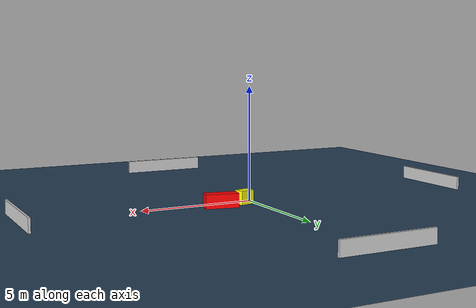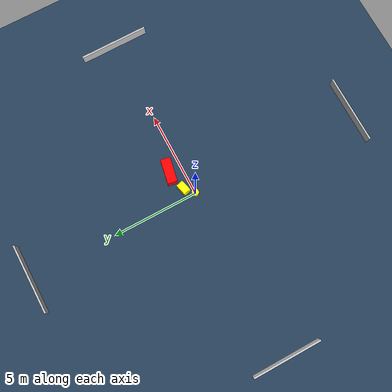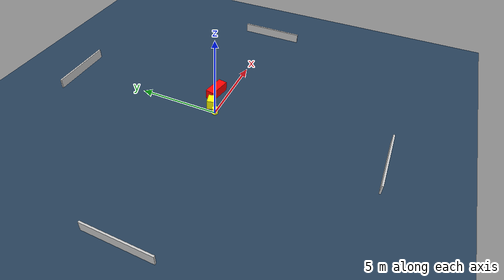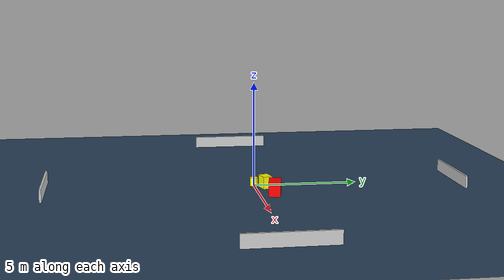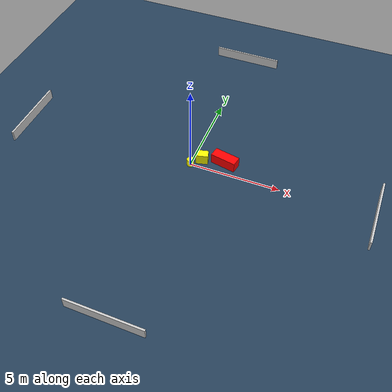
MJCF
<?xml version="1.0" ?>
<mujoco model="generated_environment">
  <option timestep="0.01" integrator="RK4" cone="elliptic"/>
  <default>
    <geom density="1"/>
  </default>
  <asset>
    <texture builtin="gradient" height="3072" name="skybox" rgb1="0.3 0.5 0.7" rgb2="0 0 0" type="skybox" width="512"/>
    <texture builtin="checker" height="300" name="groundplane" rgb1="0.2 0.3 0.4" rgb2="0.1 0.2 0.3" type="2d" width="300"/>
    <material name="groundplane" reflectance="0.2" texrepeat="5 5" texture="groundplane"/>
  </asset>
  <worldbody>
    <light dir="0 0 -1" directional="true" pos="0 0 1.5"/>
    <geom condim="3" friction="0.5 0.005 0.001" material="groundplane" name="floor" pos="0 0 0" size="0 0 0.05" type="plane"/>
    <body name="walls">
      <geom name="wall_1" condim="4" pos="-10.0 0.0 0.3" rgba="0.800000011920929 0.800000011920929 0.800000011920929 1.0" size="0.05 2.0 0.3" type="box"/>
      <geom name="wall_2" condim="4" pos="10.0 0.0 0.3" rgba="0.800000011920929 0.800000011920929 0.800000011920929 1.0" size="0.05 2.0 0.3" type="box"/>
      <geom name="wall_3" condim="4" pos="0.0 -10.0 0.3" rgba="0.800000011920929 0.800000011920929 0.800000011920929 1.0" size="2.0 0.05 0.3" type="box"/>
      <geom name="wall_4" condim="4" pos="0.0 10.0 0.3" rgba="0.800000011920929 0.800000011920929 0.800000011920929 1.0" size="2.0 0.05 0.3" type="box"/>
    </body>
    <body name="robot">
      <joint name="joint_x" type="slide" pos="0 0 0" axis="1 0 0"/>
      <joint name="joint_y" type="slide" pos="0 0 0" axis="0 1 0"/>
      <geom name="robot" type="cylinder" pos="0.0 0.0 0.2" size="0.2 0.2 0.0" mass="5.0" friction="1.0 0.005 0.0001" condim="4" rgba="1.0 1.0 0.0 1.0"/>
    </body>
    <body name="obstacle_1_movable">
      <geom name="obstacle_1_movable" condim="4" pos="0.497927509146526 0.47828349012173227 0.3" euler="0 0 283.8399391053214" friction="0.0 0.005 0.001" rgba="1.0 1.0 0.0 1.0" size="0.22374808871723254 0.32762684624780647 0.3" type="box" mass="0.1"/>
      <joint type="free"/>
    </body>
    <body name="obstacle_2_static">
      <geom name="obstacle_2_static" condim="4" pos="1.7269059950757493 0.7335731859299474 0.3" euler="0 0 79.25903808538494" friction="0.0 0.005 0.001" rgba="1.0 0.0 0.0 1.0" size="0.2824716001522503 0.7108874009400217 0.3" type="box"/>
    </body>
  </worldbody>
  <actuator>
    <motor name="actuator_x" joint="joint_x" gear="1" ctrlrange="-1 1"/>
    <motor name="actuator_y" joint="joint_y" gear="1" ctrlrange="-1 1"/>
  </actuator>
</mujoco>
